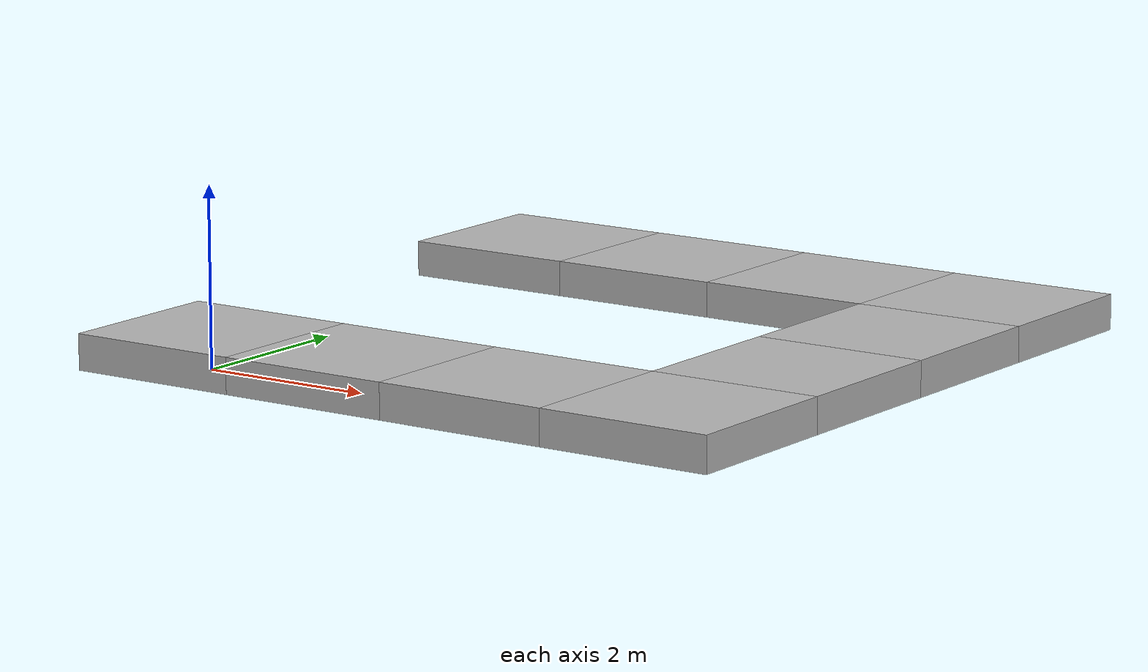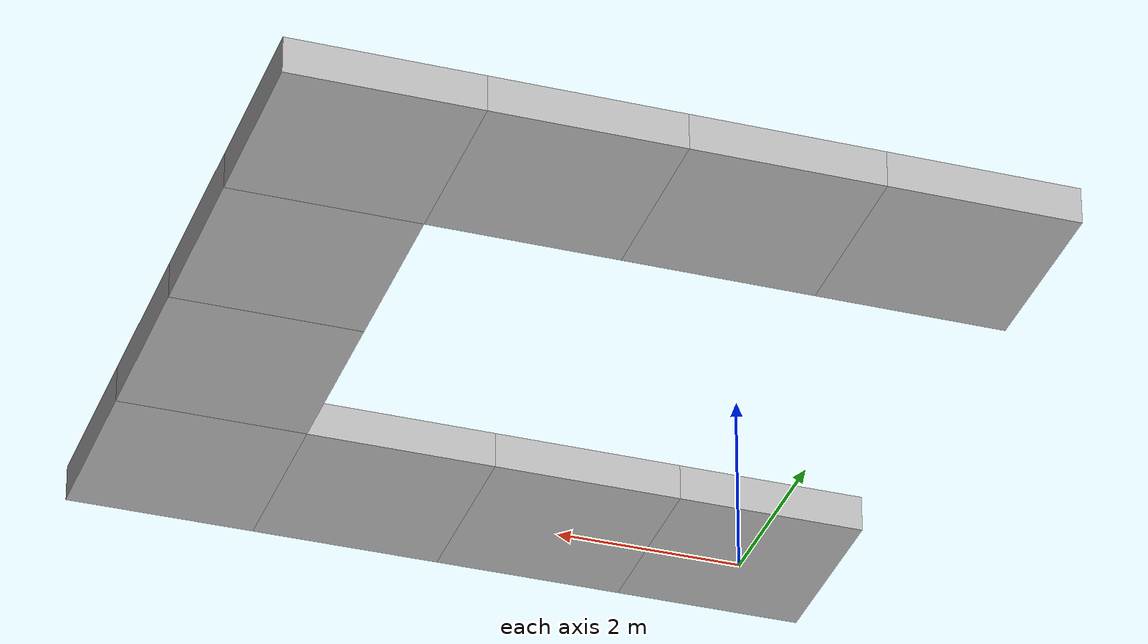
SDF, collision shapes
<?xml version="1.0" ?>
<sdf version="1.6">

  <!-- Important: This file is generated. DO NOT EDIT! -->

  <model name="robotx_dock_2018_baseU">

    <!--
      This is how this dock should look like:
          X  X          X  X          X  X          XXXX          XXXX          X  X          X  X          X  X
    -->

    <!-- Row 0 -->
    <include>
      <name>dock_block_0</name>
      <pose>0 0 0.25 0 0 0</pose>
      <uri>model://dock_block_4x4</uri>
    </include>
    <include>
      <name>dock_block_1</name>
      <pose>0 6 0.25 0 0 0</pose>
      <uri>model://dock_block_4x4</uri>
    </include>

    <!-- Row 1 -->
    <include>
      <name>dock_block_2</name>
      <pose>2 0 0.25 0 0 0</pose>
      <uri>model://dock_block_4x4</uri>
    </include>
    <include>
      <name>dock_block_3</name>
      <pose>2 6 0.25 0 0 0</pose>
      <uri>model://dock_block_4x4</uri>
    </include>

    <!-- Row 2 -->
    <include>
      <name>dock_block_4</name>
      <pose>4 0 0.25 0 0 0</pose>
      <uri>model://dock_block_4x4</uri>
    </include>
    <include>
      <name>dock_block_5</name>
      <pose>4 6 0.25 0 0 0</pose>
      <uri>model://dock_block_4x4</uri>
    </include>

    <!-- Row 3 -->
    <include>
      <name>dock_block_6</name>
      <pose>6 0 0.25 0 0 0</pose>
      <uri>model://dock_block_4x4</uri>
    </include>
    <include>
      <name>dock_block_7</name>
      <pose>6 2 0.25 0 0 0</pose>
      <uri>model://dock_block_4x4</uri>
    </include>
    <include>
      <name>dock_block_8</name>
      <pose>6 4 0.25 0 0 0</pose>
      <uri>model://dock_block_4x4</uri>
    </include>
    <include>
      <name>dock_block_9</name>
      <pose>6 6 0.25 0 0 0</pose>
      <uri>model://dock_block_4x4</uri>
    </include>

  </model>
</sdf>

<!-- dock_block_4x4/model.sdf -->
<sdf version="1.5">
  <model name="dock_block_4x4">
    <static>true</static>
    <link name="link">
      <collision name="collision">
        <pose>0 0 0 0 0 0</pose>
        <geometry>
          <box>
            <size>2 2 0.4</size>
          </box>
        </geometry>
      </collision>
      <visual name="visual">
        <pose>-0.25 0.25 0.0 0 0 0 </pose>
        <geometry>
          <mesh>
            <uri>file://dock_block_4x4/mesh/dock_block_4x4.dae</uri>
          </mesh>
        </geometry>
      </visual>
    </link>
  </model>
</sdf>
